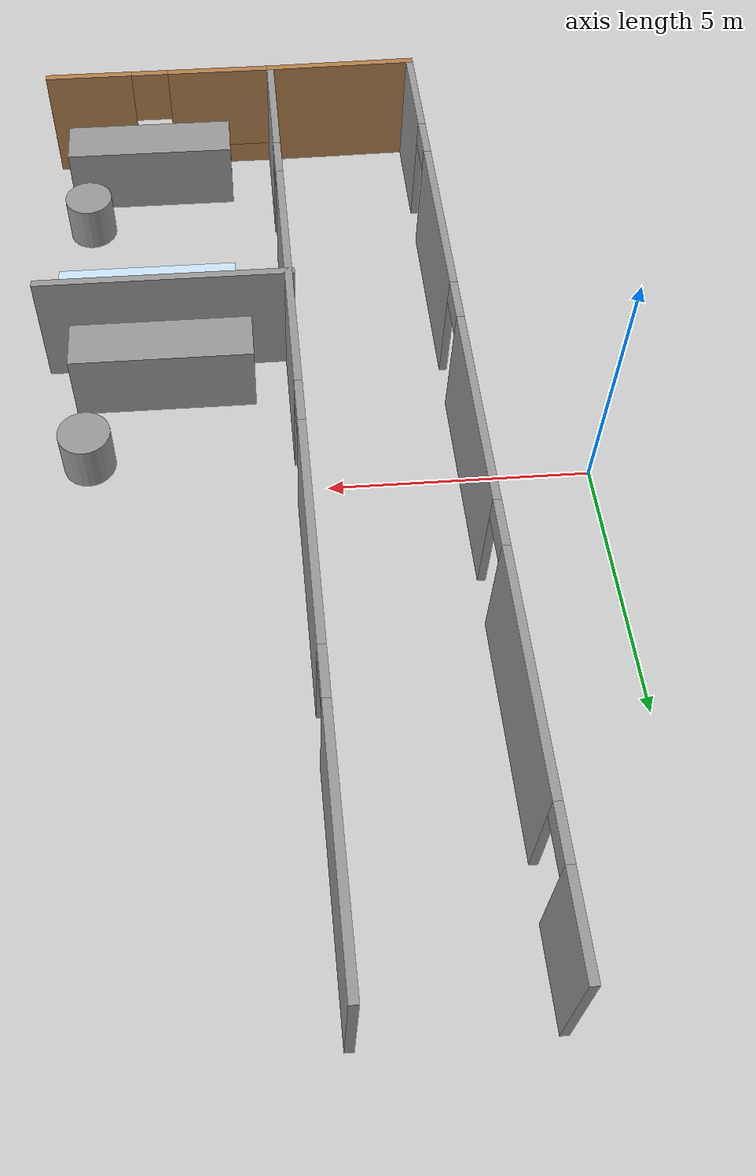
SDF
<sdf version="1.7">
 <world name="default">
  <model name="ground_plane">
   <static>1</static>
   <link name="link">
    <collision name="collision">
     <geometry><plane><normal>0 0 1</normal><size>100 100</size></plane></geometry>
     <surface><friction><ode><mu>100</mu><mu2>50</mu2></ode></friction></surface>
    </collision>
    <visual name="visual">
     <cast_shadows>0</cast_shadows>
     <geometry><plane><normal>0 0 1</normal><size>100 100</size></plane></geometry>
     <material>
      <script><uri>file://media/materials/scripts/gazebo.material</uri><name>Gazebo/Grey</name></script>
     </material>
    </visual>
   </link>
  </model>
  <model name="hospital_floor_v2">
   <link name="Door_19">
    <collision name="Door_19_Collision">
     <geometry><box><size>0.9 0.17 2</size></box></geometry>
     <pose>0 0 1 0 -0 0</pose>
    </collision>
    <visual name="Door_19_Visual">
     <pose>0 0 1 0 -0 0</pose>
     <geometry><box><size>0.9 0.17 2</size></box></geometry>
     <material>
      <script><uri>file://media/materials/scripts/gazebo.material</uri><name>Gazebo/Grey</name></script>
     </material>
    </visual>
    <pose>4.12711 -9.93446 0 0 -0 0</pose>
   </link>
   <link name="Wall_113">
    <pose>7.95 -9.7744 0 0 -0 3.14159</pose>
    <visual name="Wall_113_Visual_0">
     <pose>-1.56639 0 1.25 0 -0 0</pose>
     <geometry><box><size>1.86722 0.15 2.5</size></box></geometry>
     <material>
      <script><uri>file://media/materials/scripts/gazebo.material</uri><name>Gazebo/Wood</name></script>
      <ambient>1 1 1 1</ambient>
     </material>
     <meta><layer>0</layer></meta>
    </visual>
    <collision name="Wall_113_Collision_0">
     <geometry><box><size>1.86722 0.15 2.5</size></box></geometry>
     <pose>-1.56639 0 1.25 0 -0 0</pose>
    </collision>
    <visual name="Wall_113_Visual_1">
     <pose>0.933611 0 0.25 0 -0 0</pose>
     <geometry><box><size>3.13278 0.15 0.5</size></box></geometry>
     <material>
      <script><uri>file://media/materials/scripts/gazebo.material</uri><name>Gazebo/Wood</name></script>
      <ambient>1 1 1 1</ambient>
     </material>
     <meta><layer>0</layer></meta>
    </visual>
    <collision name="Wall_113_Collision_1">
     <geometry><box><size>3.13278 0.15 0.5</size></box></geometry>
     <pose>0.933611 0 0.25 0 -0 0</pose>
    </collision>
    <visual name="Wall_113_Visual_2">
     <pose>1.33361 0 1.5 0 -0 0</pose>
     <geometry><box><size>2.33278 0.15 2</size></box></geometry>
     <material>
      <script><uri>file://media/materials/scripts/gazebo.material</uri><name>Gazebo/Wood</name></script>
      <ambient>1 1 1 1</ambient>
     </material>
     <meta><layer>0</layer></meta>
    </visual>
    <collision name="Wall_113_Collision_2">
     <geometry><box><size>2.33278 0.15 2</size></box></geometry>
     <pose>1.33361 0 1.5 0 -0 0</pose>
    </collision>
    <visual name="Wall_113_Visual_3">
     <pose>-0.232779 0 1.9 0 -0 0</pose>
     <geometry><box><size>0.8 0.15 1.2</size></box></geometry>
     <material>
      <script><uri>file://media/materials/scripts/gazebo.material</uri><name>Gazebo/Wood</name></script>
      <ambient>1 1 1 1</ambient>
     </material>
     <meta><layer>0</layer></meta>
    </visual>
    <collision name="Wall_113_Collision_3">
     <geometry><box><size>0.8 0.15 1.2</size></box></geometry>
     <pose>-0.232779 0 1.9 0 -0 0</pose>
    </collision>
   </link>
   <link name="Wall_125">
    <collision name="Wall_125_Collision">
     <geometry><box><size>5 0.15 2.5</size></box></geometry>
     <pose>0 0 1.25 0 -0 0</pose>
    </collision>
    <visual name="Wall_125_Visual">
     <pose>0 0 1.25 0 -0 0</pose>
     <geometry><box><size>5 0.15 2.5</size></box></geometry>
     <material>
      <script><uri>file://media/materials/scripts/gazebo.material</uri><name>Gazebo/Grey</name></script>
      <ambient>1 1 1 1</ambient>
     </material>
     <meta><layer>0</layer></meta>
    </visual>
    <pose>7.90133 -3.38 0 0 -0 0</pose>
   </link>
   <link name="Wall_62">
    <pose>2.425 0.000599 0 0 -0 1.5708</pose>
    <visual name="Wall_62_Visual_0">
     <pose>-8.74333 0 1.25 0 -0 0</pose>
     <geometry><box><size>2.31335 0.15 2.5</size></box></geometry>
     <material>
      <script><uri>file://media/materials/scripts/gazebo.material</uri><name>Gazebo/Grey</name></script>
      <ambient>1 1 1 1</ambient>
     </material>
     <meta><layer>0</layer></meta>
    </visual>
    <collision name="Wall_62_Collision_0">
     <geometry><box><size>2.31335 0.15 2.5</size></box></geometry>
     <pose>-8.74333 0 1.25 0 -0 0</pose>
    </collision>
    <visual name="Wall_62_Visual_1">
     <pose>-4.76409 0 1.25 0 -0 0</pose>
     <geometry><box><size>3.84513 0.15 2.5</size></box></geometry>
     <material>
      <script><uri>file://media/materials/scripts/gazebo.material</uri><name>Gazebo/Grey</name></script>
      <ambient>1 1 1 1</ambient>
     </material>
     <meta><layer>0</layer></meta>
    </visual>
    <collision name="Wall_62_Collision_1">
     <geometry><box><size>3.84513 0.15 2.5</size></box></geometry>
     <pose>-4.76409 0 1.25 0 -0 0</pose>
    </collision>
    <visual name="Wall_62_Visual_2">
     <pose>0.143268 0 1.25 0 -0 0</pose>
     <geometry><box><size>4.16958 0.15 2.5</size></box></geometry>
     <material>
      <script><uri>file://media/materials/scripts/gazebo.material</uri><name>Gazebo/Grey</name></script>
      <ambient>1 1 1 1</ambient>
     </material>
     <meta><layer>0</layer></meta>
    </visual>
    <collision name="Wall_62_Collision_2">
     <geometry><box><size>4.16958 0.15 2.5</size></box></geometry>
     <pose>0.143268 0 1.25 0 -0 0</pose>
    </collision>
    <visual name="Wall_62_Visual_3">
     <pose>5.27369 0 1.25 0 -0 0</pose>
     <geometry><box><size>4.29125 0.15 2.5</size></box></geometry>
     <material>
      <script><uri>file://media/materials/scripts/gazebo.material</uri><name>Gazebo/Grey</name></script>
      <ambient>1 1 1 1</ambient>
     </material>
     <meta><layer>0</layer></meta>
    </visual>
    <collision name="Wall_62_Collision_3">
     <geometry><box><size>4.29125 0.15 2.5</size></box></geometry>
     <pose>5.27369 0 1.25 0 -0 0</pose>
    </collision>
    <visual name="Wall_62_Visual_4">
     <pose>9.10966 0 1.25 0 -0 0</pose>
     <geometry><box><size>1.58069 0.15 2.5</size></box></geometry>
     <material>
      <script><uri>file://media/materials/scripts/gazebo.material</uri><name>Gazebo/Grey</name></script>
      <ambient>1 1 1 1</ambient>
     </material>
     <meta><layer>0</layer></meta>
    </visual>
    <collision name="Wall_62_Collision_4">
     <geometry><box><size>1.58069 0.15 2.5</size></box></geometry>
     <pose>9.10966 0 1.25 0 -0 0</pose>
    </collision>
    <visual name="Wall_62_Visual_5">
     <pose>-7.13665 0 2.25 0 -0 0</pose>
     <geometry><box><size>0.9 0.15 0.5</size></box></geometry>
     <material>
      <script><uri>file://media/materials/scripts/gazebo.material</uri><name>Gazebo/Grey</name></script>
      <ambient>1 1 1 1</ambient>
     </material>
     <meta><layer>0</layer></meta>
    </visual>
    <collision name="Wall_62_Collision_5">
     <geometry><box><size>0.9 0.15 0.5</size></box></geometry>
     <pose>-7.13665 0 2.25 0 -0 0</pose>
    </collision>
    <visual name="Wall_62_Visual_6">
     <pose>-2.39152 0 2.25 0 -0 0</pose>
     <geometry><box><size>0.9 0.15 0.5</size></box></geometry>
     <material>
      <script><uri>file://media/materials/scripts/gazebo.material</uri><name>Gazebo/Grey</name></script>
      <ambient>1 1 1 1</ambient>
     </material>
     <meta><layer>0</layer></meta>
    </visual>
    <collision name="Wall_62_Collision_6">
     <geometry><box><size>0.9 0.15 0.5</size></box></geometry>
     <pose>-2.39152 0 2.25 0 -0 0</pose>
    </collision>
    <visual name="Wall_62_Visual_7">
     <pose>2.67806 0 2.25 0 -0 0</pose>
     <geometry><box><size>0.9 0.15 0.5</size></box></geometry>
     <material>
      <script><uri>file://media/materials/scripts/gazebo.material</uri><name>Gazebo/Grey</name></script>
      <ambient>1 1 1 1</ambient>
     </material>
     <meta><layer>0</layer></meta>
    </visual>
    <collision name="Wall_62_Collision_7">
     <geometry><box><size>0.9 0.15 0.5</size></box></geometry>
     <pose>2.67806 0 2.25 0 -0 0</pose>
    </collision>
    <visual name="Wall_62_Visual_8">
     <pose>7.86931 0 2.25 0 -0 0</pose>
     <geometry><box><size>0.9 0.15 0.5</size></box></geometry>
     <material>
      <script><uri>file://media/materials/scripts/gazebo.material</uri><name>Gazebo/Grey</name></script>
      <ambient>1 1 1 1</ambient>
     </material>
     <meta><layer>0</layer></meta>
    </visual>
    <collision name="Wall_62_Collision_8">
     <geometry><box><size>0.9 0.15 0.5</size></box></geometry>
     <pose>7.86931 0 2.25 0 -0 0</pose>
    </collision>
   </link>
   <link name="Wall_64">
    <pose>5.525 0.025599 0 0 -0 -1.5708</pose>
    <visual name="Wall_64_Visual_0">
     <pose>-7.72601 0 1.25 0 -0 0</pose>
     <geometry><box><size>4.29798 0.15 2.5</size></box></geometry>
     <material>
      <script><uri>file://media/materials/scripts/gazebo.material</uri><name>Gazebo/Grey</name></script>
      <ambient>1 1 1 1</ambient>
     </material>
     <meta><layer>0</layer></meta>
    </visual>
    <collision name="Wall_64_Collision_0">
     <geometry><box><size>4.29798 0.15 2.5</size></box></geometry>
     <pose>-7.72601 0 1.25 0 -0 0</pose>
    </collision>
    <visual name="Wall_64_Visual_1">
     <pose>-2.47056 0 1.25 0 -0 0</pose>
     <geometry><box><size>4.41292 0.15 2.5</size></box></geometry>
     <material>
      <script><uri>file://media/materials/scripts/gazebo.material</uri><name>Gazebo/Grey</name></script>
      <ambient>1 1 1 1</ambient>
     </material>
     <meta><layer>0</layer></meta>
    </visual>
    <collision name="Wall_64_Collision_1">
     <geometry><box><size>4.41292 0.15 2.5</size></box></geometry>
     <pose>-2.47056 0 1.25 0 -0 0</pose>
    </collision>
    <visual name="Wall_64_Visual_2">
     <pose>3.471 0 1.25 0 -0 0</pose>
     <geometry><box><size>5.67018 0.15 2.5</size></box></geometry>
     <material>
      <script><uri>file://media/materials/scripts/gazebo.material</uri><name>Gazebo/Grey</name></script>
      <ambient>1 1 1 1</ambient>
     </material>
     <meta><layer>0</layer></meta>
    </visual>
    <collision name="Wall_64_Collision_2">
     <geometry><box><size>5.67018 0.15 2.5</size></box></geometry>
     <pose>3.471 0 1.25 0 -0 0</pose>
    </collision>
    <visual name="Wall_64_Visual_3">
     <pose>8.54054 0 1.25 0 -0 0</pose>
     <geometry><box><size>2.66891 0.15 2.5</size></box></geometry>
     <material>
      <script><uri>file://media/materials/scripts/gazebo.material</uri><name>Gazebo/Grey</name></script>
      <ambient>1 1 1 1</ambient>
     </material>
     <meta><layer>0</layer></meta>
    </visual>
    <collision name="Wall_64_Collision_3">
     <geometry><box><size>2.66891 0.15 2.5</size></box></geometry>
     <pose>8.54054 0 1.25 0 -0 0</pose>
    </collision>
    <visual name="Wall_64_Visual_4">
     <pose>-5.12702 0 2.25 0 -0 0</pose>
     <geometry><box><size>0.9 0.15 0.5</size></box></geometry>
     <material>
      <script><uri>file://media/materials/scripts/gazebo.material</uri><name>Gazebo/Grey</name></script>
      <ambient>1 1 1 1</ambient>
     </material>
     <meta><layer>0</layer></meta>
    </visual>
    <collision name="Wall_64_Collision_4">
     <geometry><box><size>0.9 0.15 0.5</size></box></geometry>
     <pose>-5.12702 0 2.25 0 -0 0</pose>
    </collision>
    <visual name="Wall_64_Visual_5">
     <pose>0.185907 0 2.25 0 -0 0</pose>
     <geometry><box><size>0.9 0.15 0.5</size></box></geometry>
     <material>
      <script><uri>file://media/materials/scripts/gazebo.material</uri><name>Gazebo/Grey</name></script>
      <ambient>1 1 1 1</ambient>
     </material>
     <meta><layer>0</layer></meta>
    </visual>
    <collision name="Wall_64_Collision_5">
     <geometry><box><size>0.9 0.15 0.5</size></box></geometry>
     <pose>0.185907 0 2.25 0 -0 0</pose>
    </collision>
    <visual name="Wall_64_Visual_6">
     <pose>6.75609 0 2.25 0 -0 0</pose>
     <geometry><box><size>0.9 0.15 0.5</size></box></geometry>
     <material>
      <script><uri>file://media/materials/scripts/gazebo.material</uri><name>Gazebo/Grey</name></script>
      <ambient>1 1 1 1</ambient>
     </material>
     <meta><layer>0</layer></meta>
    </visual>
    <collision name="Wall_64_Collision_6">
     <geometry><box><size>0.9 0.15 0.5</size></box></geometry>
     <pose>6.75609 0 2.25 0 -0 0</pose>
    </collision>
   </link>
   <link name="Wall_65">
    <collision name="Wall_65_Collision">
     <geometry><box><size>3.2504 0.15 2.5</size></box></geometry>
     <pose>0 0 1.25 0 -0 0</pose>
    </collision>
    <visual name="Wall_65_Visual">
     <pose>0 0 1.25 0 -0 0</pose>
     <geometry><box><size>3.2504 0.15 2.5</size></box></geometry>
     <material>
      <script><uri>file://media/materials/scripts/gazebo.material</uri><name>Gazebo/Wood</name></script>
      <ambient>1 1 1 1</ambient>
     </material>
     <meta><layer>0</layer></meta>
    </visual>
    <pose>3.975 -9.7994 0 0 -0 -3.12547</pose>
   </link>
   <static>1</static>
  </model>
  <model name="unit_box_2_clone">
   <pose>8.04053 -2.69792 0.747084 -0 -0.00015 -2.8e-05</pose>
   <link name="link">
    <inertial>
     <mass>1</mass>
     <inertia>
      <ixx>0.166667</ixx>
      <ixy>0</ixy>
      <ixz>0</ixz>
      <iyy>0.166667</iyy>
      <iyz>0</iyz>
      <izz>0.166667</izz>
     </inertia>
    </inertial>
    <collision name="collision"><geometry><box><size>3.55191 1 1.4947</size></box></geometry></collision>
    <visual name="visual">
     <geometry><box><size>3.55191 1 1.4947</size></box></geometry>
     <material>
      <script><name>Gazebo/Grey</name><uri>file://media/materials/scripts/gazebo.material</uri></script>
     </material>
    </visual>
   </link>
  </model>
  <model name="unit_box_2_clone_0">
   <pose>8.28052 -8.77949 0.747084 0 -0.00015 3e-05</pose>
   <link name="link">
    <inertial>
     <mass>1</mass>
     <inertia>
      <ixx>0.166667</ixx>
      <ixy>0</ixy>
      <ixz>0</ixz>
      <iyy>0.166667</iyy>
      <iyz>0</iyz>
      <izz>0.166667</izz>
     </inertia>
    </inertial>
    <collision name="collision"><geometry><box><size>3.55191 1 1.4947</size></box></geometry></collision>
    <visual name="visual">
     <geometry><box><size>3.55191 1 1.4947</size></box></geometry>
     <material>
      <script><name>Gazebo/Grey</name><uri>file://media/materials/scripts/gazebo.material</uri></script>
     </material>
    </visual>
   </link>
  </model>
  <model name="unit_cylinder_2">
   <pose>9.52835 -0.897461 0.499998 3e-06 -1e-06 0</pose>
   <link name="link">
    <inertial>
     <mass>1</mass>
     <inertia><ixx>0.145833</ixx><ixy>0</ixy><ixz>0</ixz><iyy>0.145833</iyy><iyz>0</iyz><izz>0.125</izz></inertia>
    </inertial>
    <collision name="collision">
     <geometry><cylinder><radius>0.5</radius><length>1</length></cylinder></geometry>
    </collision>
    <visual name="visual">
     <geometry><cylinder><radius>0.5</radius><length>1</length></cylinder></geometry>
     <material>
      <script><name>Gazebo/Grey</name><uri>file://media/materials/scripts/gazebo.material</uri></script>
     </material>
    </visual>
   </link>
  </model>
  <model name="unit_cylinder_4">
   <pose>9.64832 -7.47917 0.499994 -4e-06 -1e-06 0</pose>
   <link name="link">
    <inertial>
     <mass>1</mass>
     <inertia><ixx>0.145833</ixx><ixy>0</ixy><ixz>0</ixz><iyy>0.145833</iyy><iyz>0</iyz><izz>0.125</izz></inertia>
    </inertial>
    <collision name="collision">
     <geometry><cylinder><radius>0.5</radius><length>1</length></cylinder></geometry>
    </collision>
    <visual name="visual">
     <geometry><cylinder><radius>0.5</radius><length>1</length></cylinder></geometry>
     <material>
      <script><name>Gazebo/Grey</name><uri>file://media/materials/scripts/gazebo.material</uri></script>
     </material>
    </visual>
   </link>
  </model>
  <model name="unit_box_2_clone_1">
   <link name="link">
    <inertial>
     <mass>1</mass>
     <inertia>
      <ixx>0.166667</ixx>
      <ixy>0</ixy>
      <ixz>0</ixz>
      <iyy>0.166667</iyy>
      <iyz>0</iyz>
      <izz>0.166667</izz>
     </inertia>
    </inertial>
    <visual name="visual">
     <geometry><box><size>3.55191 1 1.4947</size></box></geometry>
     <material>
      <script><name>Gazebo/Grey</name><uri>file://media/materials/scripts/gazebo.material</uri></script>
      <shader type="pixel"><normal_map>__default__</normal_map></shader>
      <ambient>0.7 0.8 0.9 0</ambient>
      <diffuse>0.8 0.9 0.98 1</diffuse>
      <specular>0.04 0.04 0.04 1</specular>
      <emissive>0 0 0 1</emissive>
     </material>
    </visual>
    <collision name="collision">
     <geometry><box><size>3.55191 1 1.4947</size></box></geometry>
     <surface>
      <friction>
       <ode><mu>1</mu><mu2>1</mu2><fdir1>0 0 0</fdir1><slip1>0</slip1><slip2>0</slip2></ode>
       <torsional>
        <coefficient>1</coefficient>
        <patch_radius>0</patch_radius>
        <surface_radius>0</surface_radius>
        <use_patch_radius>1</use_patch_radius>
        <ode><slip>0</slip></ode>
       </torsional>
      </friction>
      <bounce><restitution_coefficient>0</restitution_coefficient><threshold>1e+06</threshold></bounce>
      <contact>
       <collide_without_contact>0</collide_without_contact>
       <collide_without_contact_bitmask>1</collide_without_contact_bitmask>
       <collide_bitmask>1</collide_bitmask>
       <ode>
        <soft_cfm>0</soft_cfm>
        <soft_erp>0.2</soft_erp>
        <kp>1e+13</kp>
        <kd>1</kd>
        <max_vel>0.01</max_vel>
        <min_depth>0</min_depth>
       </ode>
       <bullet>
        <split_impulse>1</split_impulse>
        <split_impulse_penetration_threshold>-0.01</split_impulse_penetration_threshold>
        <soft_cfm>0</soft_cfm>
        <soft_erp>0.2</soft_erp>
        <kp>1e+13</kp>
        <kd>1</kd>
       </bullet>
      </contact>
     </surface>
    </collision>
   </link>
   <static>0</static>
   <pose>8.308 -4.21832 0.747086 0 -0.00015 6e-06</pose>
  </model>
 </world>
</sdf>
